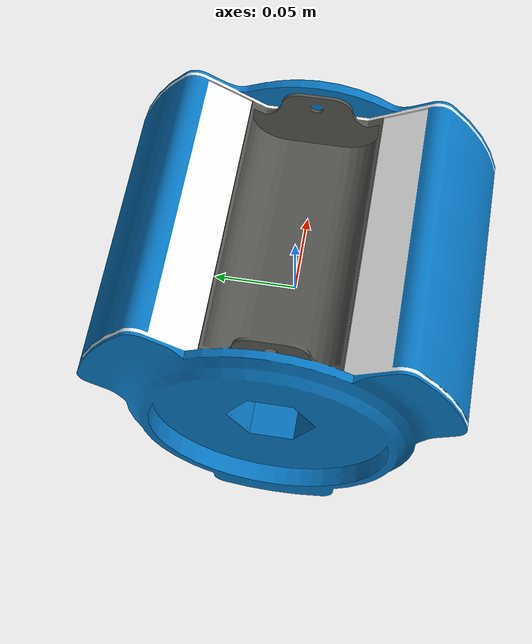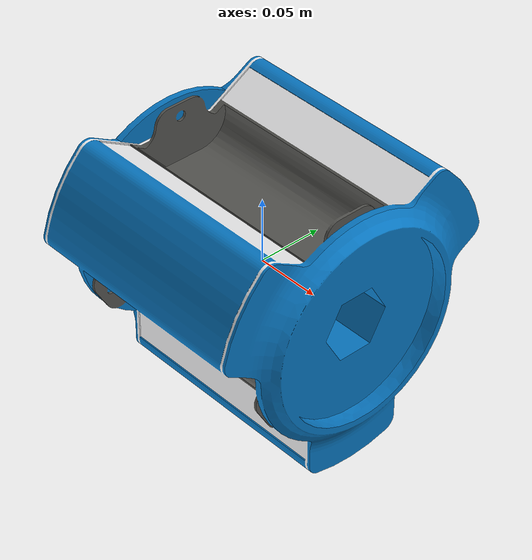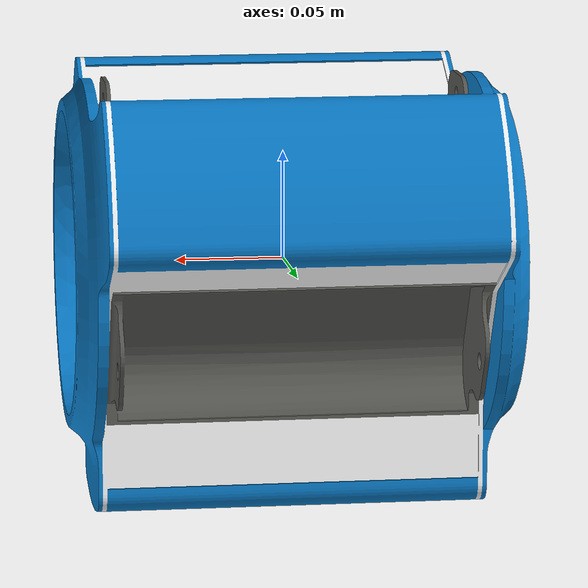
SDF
<?xml version="1.0"?>
<sdf version="1.7">
  <model name="body">
    <link name='bLink'>
      <pose>0 0 0 0 0 0</pose>
      <inertial>
      <!-- Se usarán tolerancias de +-1g -->
        <mass>1.114</mass>
        <inertia>
          <!-- Se usarán tolerancias de +-0.01kg/mm2 -->
          <ixx>0.00773</ixx>
          <ixy>0</ixy>
          <ixz>0</ixz>
          <iyy>0.00937</iyy>
          <iyz>0</iyz>
          <izz>0.00938</izz>
        </inertia>
      </inertial>
      <collision name='collision'>
        <geometry>
          <mesh>
            <scale> 0.001 0.001 0.001</scale>
            <uri>model://rm2_body/meshes/body_collision.stl</uri>
          </mesh>
        </geometry>
      </collision>
      <visual name='visual'>
        <transparency>0</transparency>
        <geometry>
          <mesh>
            <uri>model://rm2_body/meshes/body_structure_blue.dae</uri>
          </mesh>
        </geometry>
      </visual>
    </link>
  </model>
</sdf>
